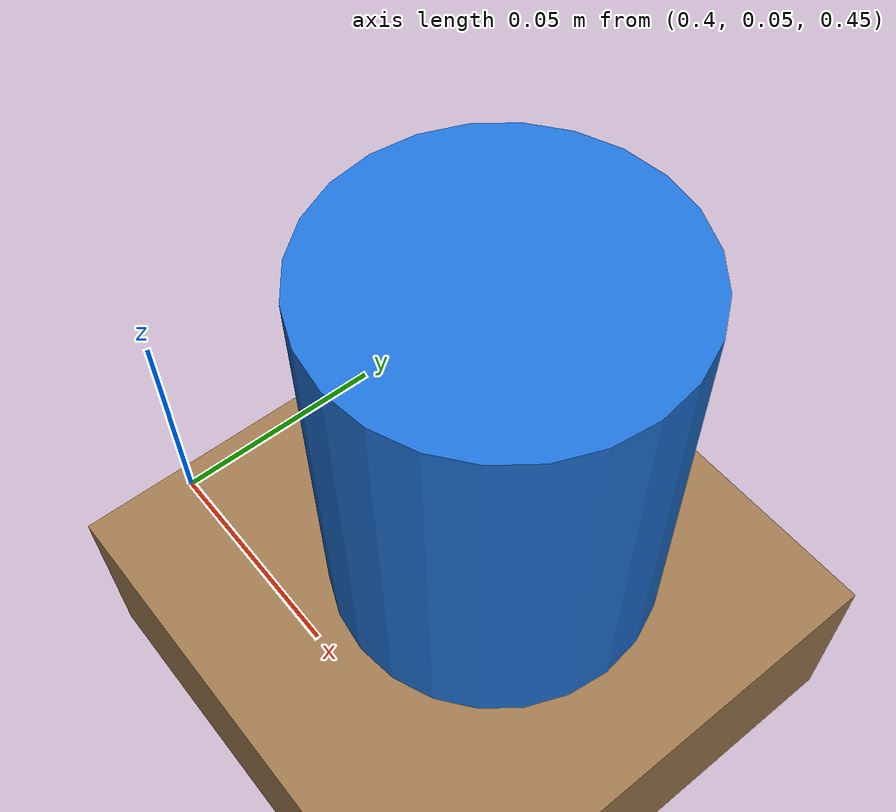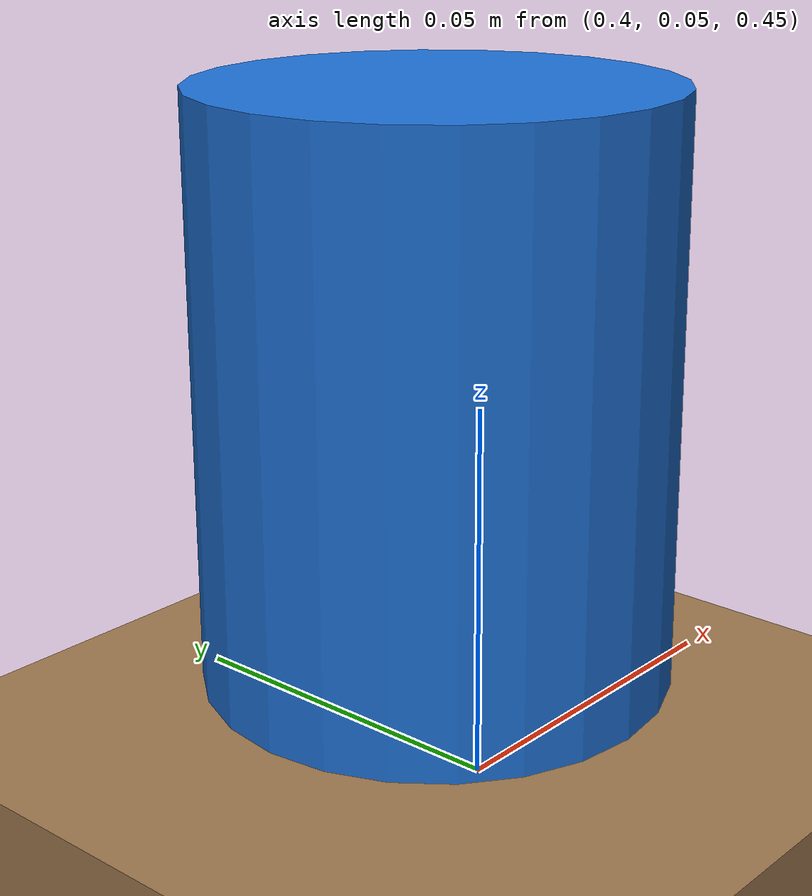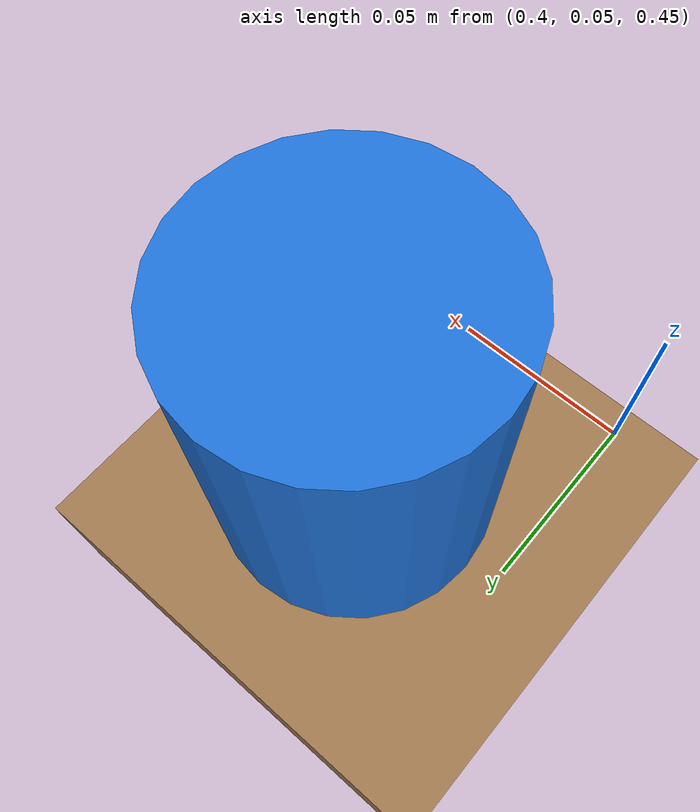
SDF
<?xml version="1.0"?>
<sdf version="1.9">
  <world name="pick_scene">
    <physics name="1ms" type="ignored">
      <max_step_size>0.001</max_step_size>
      <real_time_factor>1.0</real_time_factor>
    </physics>

    <plugin filename="gz-sim-physics-system" name="gz::sim::systems::Physics"/>
    <plugin filename="gz-sim-user-commands-system" name="gz::sim::systems::UserCommands"/>
    <plugin filename="gz-sim-scene-broadcaster-system" name="gz::sim::systems::SceneBroadcaster"/>
    <plugin filename="gz-sim-sensors-system" name="gz::sim::systems::Sensors">
      <render_engine>ogre</render_engine>
    </plugin>

    <scene>
      <ambient>0.45 0.45 0.45 1</ambient>
      <background>0.78 0.84 0.90 1</background>
    </scene>

    <light name="key_light" type="directional">
      <pose>0 0 4 0 0 0</pose>
      <diffuse>0.9 0.9 0.85 1</diffuse>
      <specular>0.2 0.2 0.2 1</specular>
      <direction>-0.5 0.2 -1</direction>
    </light>

    <model name="ground_plane">
      <static>true</static>
      <link name="link">
        <collision name="collision">
          <geometry>
            <plane>
              <normal>0 0 1</normal>
              <size>10 10</size>
            </plane>
          </geometry>
        </collision>
        <visual name="visual">
          <geometry>
            <plane>
              <normal>0 0 1</normal>
              <size>10 10</size>
            </plane>
          </geometry>
          <material>
            <diffuse>0.55 0.57 0.58 1</diffuse>
          </material>
        </visual>
      </link>
    </model>

    <model name="table">
      <static>true</static>
      <pose>0.50 0 0.40 0 0 0</pose>
      <link name="table_link">
        <collision name="top_collision">
          <geometry>
            <box>
              <size>0.60 0.60 0.05</size>
            </box>
          </geometry>
        </collision>
        <visual name="top_visual">
          <geometry>
            <box>
              <size>0.60 0.60 0.05</size>
            </box>
          </geometry>
          <material>
            <diffuse>0.62 0.47 0.31 1</diffuse>
          </material>
        </visual>
      </link>
    </model>

    <model name="target_cup">
      <static>false</static>
      <pose>0.45 0.10 0.48 0 0 0</pose>
      <link name="cup_link">
        <inertial>
          <mass>0.05</mass>
          <inertia>
            <ixx>0.0001</ixx>
            <iyy>0.0001</iyy>
            <izz>0.0001</izz>
          </inertia>
        </inertial>
        <collision name="collision">
          <geometry>
            <cylinder>
              <radius>0.04</radius>
              <length>0.10</length>
            </cylinder>
          </geometry>
        </collision>
        <visual name="visual">
          <geometry>
            <cylinder>
              <radius>0.04</radius>
              <length>0.10</length>
            </cylinder>
          </geometry>
          <material>
            <diffuse>0.12 0.45 0.85 1</diffuse>
            <specular>0.1 0.1 0.1 1</specular>
          </material>
        </visual>
      </link>
    </model>
  </world>
</sdf>
